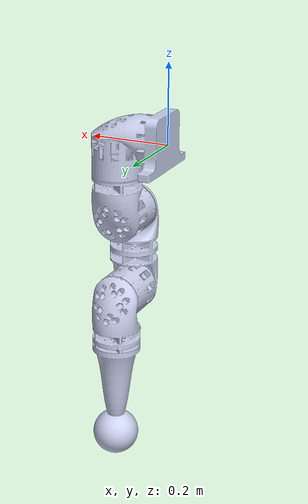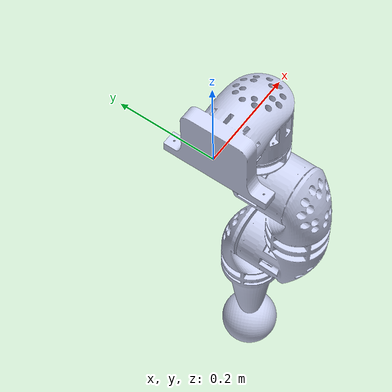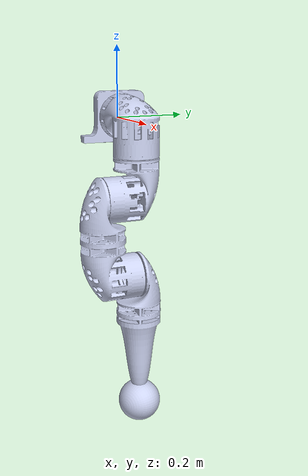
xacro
<?xml version="1.0"?>
<robot name="gleg_3dof" xmlns:xacro="http://www.ros.org/wiki/xacro">

<xacro:property name="ThisPackage" value="urdf_packer" />
<xacro:property name="Filename" value="gleg_3dof" />
<xacro:property name="UrdfDataPath" value="package://${ThisPackage}/urdf/${Filename}" />
<xacro:property name="MeshPath" value="package://${ThisPackage}/meshes/${Filename}" />
<xacro:property name="LimUpJ3" value="2.5" />
<xacro:property name="LimLowJ3" value="-2.5" />
<xacro:property name="LimUpJ2" value="1.8" />
<xacro:property name="LimLowJ2" value="-1.8" />
<xacro:property name="LimUpJ1" value="1.8" />
<xacro:property name="LimLowJ1" value="-1.8" />

  <link
    name="base_link">
    <inertial>
      <origin
        xyz="0.0737181663612969 0 0"
        rpy="0 0 0" />
      <mass
        value="1.9302355725426" />
      <inertia
        ixx="0.00441376265902888"
        ixy="6.05980849802811E-06"
        ixz="-0.000240790589980475"
        iyy="0.00396740408703704"
        iyz="6.42515208673678E-06"
        izz="0.0050267383360539" />
    </inertial>
    <visual>
      <origin
        xyz="0 0 0"
        rpy="0 0 0" />
      <geometry>
        <mesh
        filename="${MeshPath}/base_link.stl" />
      </geometry>
      <material
        name="">
        <color
          rgba="0.792156862745098 0.819607843137255 0.933333333333333 1" />
      </material>
    </visual>
    <collision>
      <origin
        xyz="0 0 0"
        rpy="0 0 0" />
      <geometry>
        <mesh
        filename="${MeshPath}/base_link.stl" />
      </geometry>
    </collision>
  </link>
  <link
    name="link1">
    <inertial>
      <origin
        xyz="0.0784908093972233 0 0"
        rpy="0 0 0" />
      <mass
        value="1.27383543659396" />
      <inertia
        ixx="0.00185232923880239"
        ixy="-0.000182672068898662"
        ixz="-9.14927639506786E-06"
        iyy="0.00341682803779176"
        iyz="5.27072928622304E-05"
        izz="0.00258559986663596" />
    </inertial>
    <visual>
      <origin
        xyz="0 0 0"
        rpy="-0.05 0 0" />
      <geometry>
        <mesh
        filename="${MeshPath}/link1.stl" />
      </geometry>
      <material
        name="">
        <color
          rgba="0.792156862745098 0.819607843137255 0.933333333333333 1" />
      </material>
    </visual>
    <collision>
      <origin
        xyz="0 0 0"
        rpy="0 0 0" />
      <geometry>
        <mesh
        filename="${MeshPath}/link1.stl" />
      </geometry>
    </collision>
  </link>
  <joint
    name="joint1"
    type="revolute">
    <origin
      xyz="0.1355 0 -0.095"
      rpy="0 1.5708 0" />
    <parent
      link="base_link" />
    <child
      link="link1" />
    <axis
      xyz="1 0 0" />
    <limit
      lower="${LimLowJ1}"
      upper="${LimUpJ1}"
      effort="10"
      velocity="10" />
  </joint>
  <link
    name="link2">
    <inertial>
      <origin
        xyz="0 0 -0.15"
        rpy="0 0 0" />
      <mass
        value="2.10603379407989" />
      <inertia
        ixx="0.00567967798548544"
        ixy="0.000152727136333003"
        ixz="-4.1650555531643E-05"
        iyy="0.0044680365770033"
        iyz="0.000283044017112833"
        izz="0.00313214190718876" />
    </inertial>
    <visual>
      <origin
        xyz="0 0 0"
        rpy="-0.200 -0.01 -0.13" />
      <geometry>
        <mesh
        filename="${MeshPath}/link2.stl" />
      </geometry>
      <material
        name="">
        <color
          rgba="0.792156862745098 0.819607843137255 0.933333333333333 1" />
      </material>
    </visual>
    <collision>
      <origin
        xyz="0 0 0"
        rpy="0 0 0" />
      <geometry>
        <mesh
        filename="${MeshPath}/link2.stl" />
      </geometry>
    </collision>
  </link>
  <joint
    name="joint2"
    type="revolute">
    <origin
      xyz="0.11 -0.1 0"
      rpy="1.5708 0 -1.5708" />
    <parent
      link="link1" />
    <child
      link="link2" />
    <axis
      xyz="1 0 0" />
    <limit
      lower="${LimLowJ2}"
      upper="${LimUpJ2}"
      effort="10"
      velocity="10" />
  </joint>
  <link
    name="link3">
    <inertial>
      <origin
        xyz="0 0 -0.243"
        rpy="0 0 0" />
      <mass
        value="2.88243276341263" />
      <inertia
        ixx="0.00856398568690665"
        ixy="0.000119194987949066"
        ixz="-0.000306529370217758"
        iyy="0.00800054615442013"
        iyz="0.000996187074893863"
        izz="0.00414675288203846" />
    </inertial>
    <visual>
      <origin
        xyz="0 0 0"
        rpy="-0.25 -0.04 -0.14" />
      <geometry>
        <mesh
        filename="${MeshPath}/link3.stl" />
      </geometry>
      <material
        name="">
        <color
          rgba="0.792156862745098 0.819607843137255 0.933333333333333 1" />
      </material>
    </visual>
    <collision>
      <origin
        xyz="0 0 0"
        rpy="0 0 0" />
      <geometry>
        <mesh
        filename="${MeshPath}/link3.stl" />
      </geometry>
    </collision>
  </link>
  <joint
    name="joint3"
    type="revolute">
    <origin
      xyz="-0.106 0.0 -0.22"
      rpy="0 0 -3.1416" />
    <parent
      link="link2" />
    <child
      link="link3" />
    <axis
      xyz="1 0 0" />
    <limit
      lower="${LimLowJ3}"
      upper="${LimUpJ3}"
      effort="10"
      velocity="10" />
  </joint>
  <link
    name="EndEff">
  </link>
  <joint
    name="EEfixed"
    type="fixed">
    <origin
      xyz="0 0 -0.39"
      rpy="0 0 0" />
    <parent
      link="link3" />
    <child
      link="EndEff" />
    <axis
      xyz="0 0 0" />
  </joint>
</robot>
